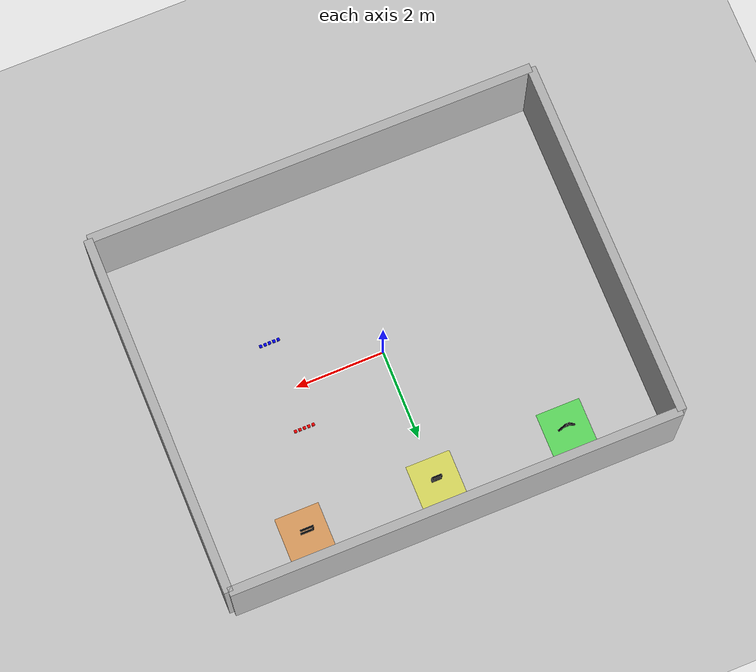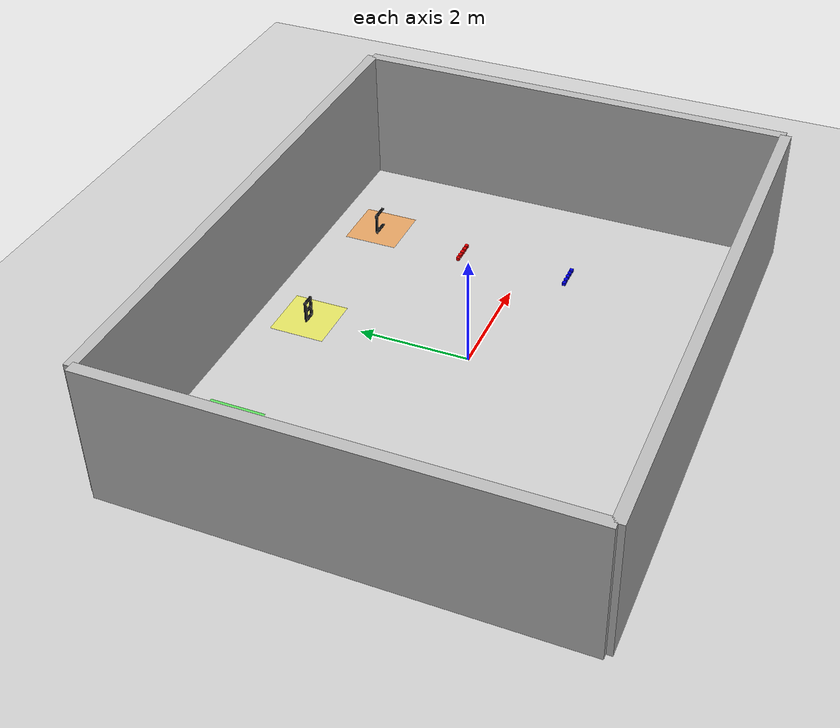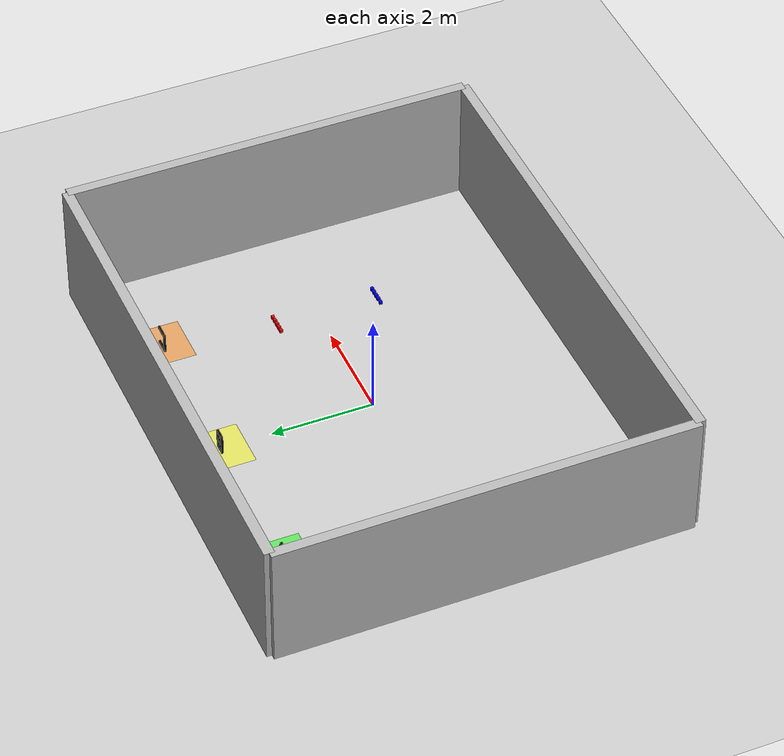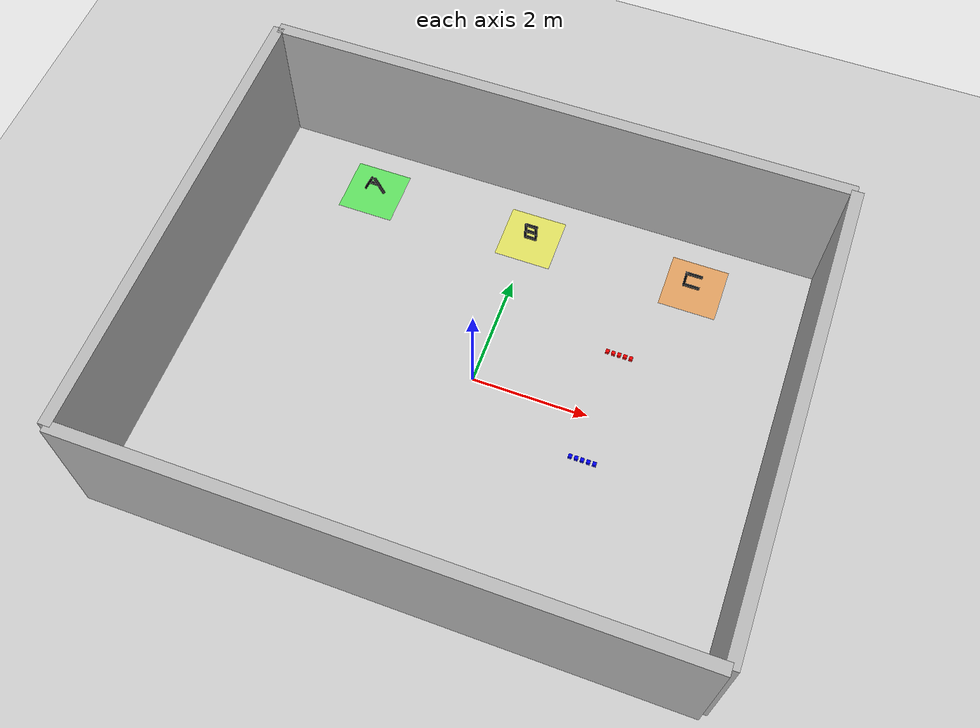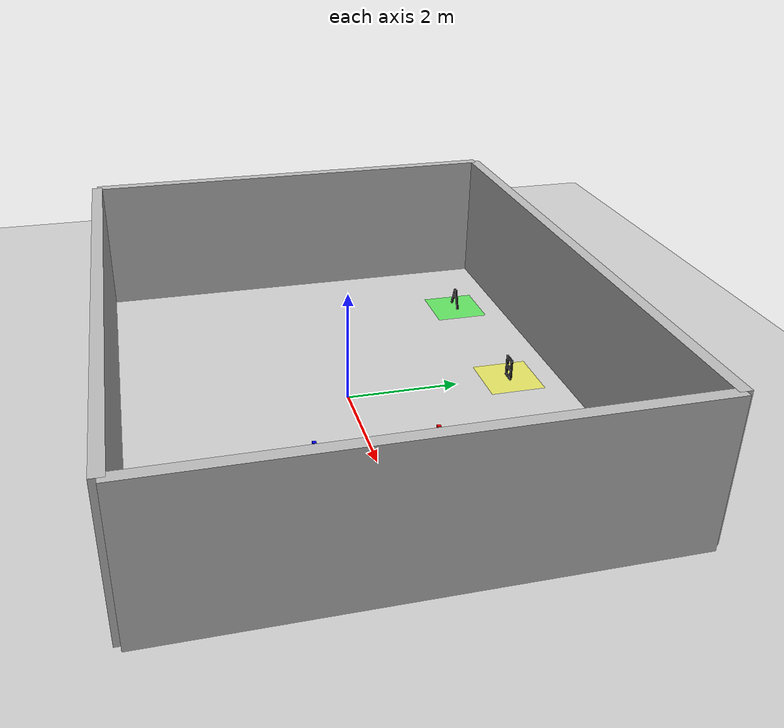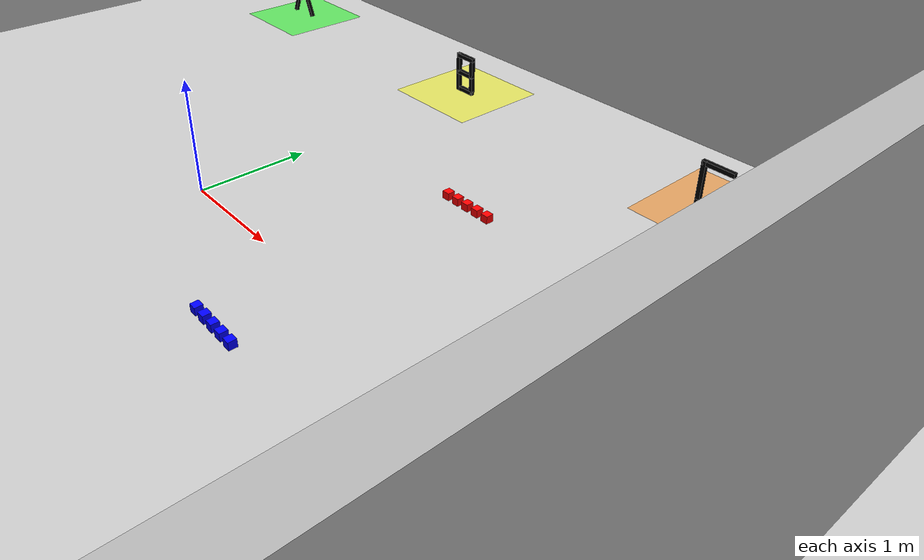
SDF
<?xml version="1.0" ?>
<sdf version="1.6">
  <world name="default">

    <include>
      <uri>model://sun</uri>
    </include>
    <include>
      <uri>model://ground_plane</uri>
    </include>

    <model name='wall_north'>
      <static>true</static>
      <pose>0 4 1.25 0 0 0</pose>
      <link name='link'>
        <collision name='collision'><geometry><box><size>10 0.2 2.5</size></box></geometry></collision>
        <visual name='visual'><geometry><box><size>10 0.2 2.5</size></box></geometry></visual>
      </link>
    </model>
    <model name='wall_south'>
      <static>true</static>
      <pose>0 -4 1.25 0 0 0</pose>
      <link name='link'>
        <collision name='collision'><geometry><box><size>10 0.2 2.5</size></box></geometry></collision>
        <visual name='visual'><geometry><box><size>10 0.2 2.5</size></box></geometry></visual>
      </link>
    </model>
    <model name='wall_east'>
      <static>true</static>
      <pose>5 0 1.25 0 0 1.5707</pose>
      <link name='link'>
        <collision name='collision'><geometry><box><size>8 0.2 2.5</size></box></geometry></collision>
        <visual name='visual'><geometry><box><size>8 0.2 2.5</size></box></geometry></visual>
      </link>
    </model>
    <model name='wall_west'>
      <static>true</static>
      <pose>-5 0 1.25 0 0 1.5707</pose>
      <link name='link'>
        <collision name='collision'><geometry><box><size>8 0.2 2.5</size></box></geometry></collision>
        <visual name='visual'><geometry><box><size>8 0.2 2.5</size></box></geometry></visual>
      </link>
    </model>

    <model name='red_cargo_box_1'>
      <pose>2.0 1.0 0.5 0 0 0</pose>
      <link name='link'>
        <inertial><mass>0.1</mass></inertial>
        <collision name='collision'><geometry><box><size>0.06 0.06 0.06</size></box></geometry></collision>
        <visual name='visual'>
          <geometry><box><size>0.06 0.06 0.06</size></box></geometry>
          <material><ambient>1 0 0 1</ambient><diffuse>1 0 0 1</diffuse></material>
        </visual>
      </link>
    </model>
    <model name='red_cargo_box_2'>
      <pose>2.1 1.0 0.5 0 0 0</pose>
      <link name='link'>
        <inertial><mass>0.1</mass></inertial>
        <collision name='collision'><geometry><box><size>0.06 0.06 0.06</size></box></geometry></collision>
        <visual name='visual'>
          <geometry><box><size>0.06 0.06 0.06</size></box></geometry>
          <material><ambient>1 0 0 1</ambient><diffuse>1 0 0 1</diffuse></material>
        </visual>
      </link>
    </model>
    <model name='red_cargo_box_3'>
      <pose>2.2 1.0 0.5 0 0 0</pose>
      <link name='link'>
        <inertial><mass>0.1</mass></inertial>
        <collision name='collision'><geometry><box><size>0.06 0.06 0.06</size></box></geometry></collision>
        <visual name='visual'>
          <geometry><box><size>0.06 0.06 0.06</size></box></geometry>
          <material><ambient>1 0 0 1</ambient><diffuse>1 0 0 1</diffuse></material>
        </visual>
      </link>
    </model>
    <model name='red_cargo_box_4'>
      <pose>2.3 1.0 0.5 0 0 0</pose>
      <link name='link'>
        <inertial><mass>0.1</mass></inertial>
        <collision name='collision'><geometry><box><size>0.06 0.06 0.06</size></box></geometry></collision>
        <visual name='visual'>
          <geometry><box><size>0.06 0.06 0.06</size></box></geometry>
          <material><ambient>1 0 0 1</ambient><diffuse>1 0 0 1</diffuse></material>
        </visual>
      </link>
    </model>
    <model name='red_cargo_box_5'>
      <pose>2.4 1.0 0.5 0 0 0</pose>
      <link name='link'>
        <inertial><mass>0.1</mass></inertial>
        <collision name='collision'><geometry><box><size>0.06 0.06 0.06</size></box></geometry></collision>
        <visual name='visual'>
          <geometry><box><size>0.06 0.06 0.06</size></box></geometry>
          <material><ambient>1 0 0 1</ambient><diffuse>1 0 0 1</diffuse></material>
        </visual>
      </link>
    </model>

    <model name='blue_cargo_box_1'>
      <pose>2.0 -1.0 0.5 0 0 0</pose>
      <link name='link'>
        <inertial><mass>0.1</mass></inertial>
        <collision name='collision'><geometry><box><size>0.06 0.06 0.06</size></box></geometry></collision>
        <visual name='visual'>
          <geometry><box><size>0.06 0.06 0.06</size></box></geometry>
          <material><ambient>0 0 1 1</ambient><diffuse>0 0 1 1</diffuse></material>
        </visual>
      </link>
    </model>
    <model name='blue_cargo_box_2'>
      <pose>2.1 -1.0 0.5 0 0 0</pose>
      <link name='link'>
        <inertial><mass>0.1</mass></inertial>
        <collision name='collision'><geometry><box><size>0.06 0.06 0.06</size></box></geometry></collision>
        <visual name='visual'>
          <geometry><box><size>0.06 0.06 0.06</size></box></geometry>
          <material><ambient>0 0 1 1</ambient><diffuse>0 0 1 1</diffuse></material>
        </visual>
      </link>
    </model>
    <model name='blue_cargo_box_3'>
      <pose>2.2 -1.0 0.5 0 0 0</pose>
      <link name='link'>
        <inertial><mass>0.1</mass></inertial>
        <collision name='collision'><geometry><box><size>0.06 0.06 0.06</size></box></geometry></collision>
        <visual name='visual'>
          <geometry><box><size>0.06 0.06 0.06</size></box></geometry>
          <material><ambient>0 0 1 1</ambient><diffuse>0 0 1 1</diffuse></material>
        </visual>
      </link>
    </model>
    <model name='blue_cargo_box_4'>
      <pose>2.3 -1.0 0.5 0 0 0</pose>
      <link name='link'>
        <inertial><mass>0.1</mass></inertial>
        <collision name='collision'><geometry><box><size>0.06 0.06 0.06</size></box></geometry></collision>
        <visual name='visual'>
          <geometry><box><size>0.06 0.06 0.06</size></box></geometry>
          <material><ambient>0 0 1 1</ambient><diffuse>0 0 1 1</diffuse></material>
        </visual>
      </link>
    </model>
    <model name='blue_cargo_box_5'>
      <pose>2.4 -1.0 0.5 0 0 0</pose>
      <link name='link'>
        <inertial><mass>0.1</mass></inertial>
        <collision name='collision'><geometry><box><size>0.06 0.06 0.06</size></box></geometry></collision>
        <visual name='visual'>
          <geometry><box><size>0.06 0.06 0.06</size></box></geometry>
          <material><ambient>0 0 1 1</ambient><diffuse>0 0 1 1</diffuse></material>
        </visual>
      </link>
    </model>

    <model name='placement_area_A'>
      <static>true</static>
      <pose>-3 3 0.01 0 0 0</pose>
      <link name='base_area'>
        <visual name='visual'>
          <geometry><plane><normal>0 0 1</normal><size>1 1</size></plane></geometry>
          <material><ambient>0 1 0 0.5</ambient><diffuse>0 1 0 0.5</diffuse></material>
        </visual>
      </link>
      <link name='letter_A_1'><pose>-0.1 0 0.22 0 0.4 0</pose><visual name='v'><geometry><box><size>0.04 0.04 0.4</size></box></geometry><material><ambient>0 0 0 1</ambient><diffuse>0 0 0 1</diffuse></material></visual></link>
      <link name='letter_A_2'><pose>0.1 0 0.22 0 -0.4 0</pose><visual name='v'><geometry><box><size>0.04 0.04 0.4</size></box></geometry><material><ambient>0 0 0 1</ambient><diffuse>0 0 0 1</diffuse></material></visual></link>
      <link name='letter_A_3'><pose>0 0 0.25 0 0 0</pose><visual name='v'><geometry><box><size>0.15 0.04 0.04</size></box></geometry><material><ambient>0 0 0 1</ambient><diffuse>0 0 0 1</diffuse></material></visual></link>
    </model>

    <model name='placement_area_B'>
      <static>true</static>
      <pose>0 3 0.01 0 0 0</pose>
      <link name='base_area'>
        <visual name='visual'>
          <geometry><plane><normal>0 0 1</normal><size>1 1</size></plane></geometry>
          <material><ambient>1 1 0 0.5</ambient><diffuse>1 1 0 0.5</diffuse></material>
        </visual>
      </link>
      <link name='letter_B_vertical_stroke'><pose>-0.1 0 0.2 0 0 0</pose><visual name='v'><geometry><box><size>0.04 0.04 0.4</size></box></geometry><material><ambient>0 0 0 1</ambient><diffuse>0 0 0 1</diffuse></material></visual></link>
      <link name='letter_B_top_horizontal'><pose>0.0 0 0.38 0 0 0</pose><visual name='v'><geometry><box><size>0.22 0.04 0.04</size></box></geometry><material><ambient>0 0 0 1</ambient><diffuse>0 0 0 1</diffuse></material></visual></link>
      <link name='letter_B_middle_horizontal'><pose>0.0 0 0.2 0 0 0</pose><visual name='v'><geometry><box><size>0.22 0.04 0.04</size></box></geometry><material><ambient>0 0 0 1</ambient><diffuse>0 0 0 1</diffuse></material></visual></link>
      <link name='letter_B_bottom_horizontal'><pose>0.0 0 0.02 0 0 0</pose><visual name='v'><geometry><box><size>0.22 0.04 0.04</size></box></geometry><material><ambient>0 0 0 1</ambient><diffuse>0 0 0 1</diffuse></material></visual></link>
      <link name='letter_B_top_vertical_stroke'><pose>0.09 0 0.29 0 0 0</pose><visual name='v'><geometry><box><size>0.04 0.04 0.2</size></box></geometry><material><ambient>0 0 0 1</ambient><diffuse>0 0 0 1</diffuse></material></visual></link>
      <link name='letter_B_bottom_vertical_stroke'><pose>0.09 0 0.11 0 0 0</pose><visual name='v'><geometry><box><size>0.04 0.04 0.2</size></box></geometry><material><ambient>0 0 0 1</ambient><diffuse>0 0 0 1</diffuse></material></visual></link>
    </model>

    <model name='placement_area_C'>
      <static>true</static>
      <pose>3 3 0.01 0 0 0</pose>
      <link name='base_area'>
        <visual name='visual'>
          <geometry><plane><normal>0 0 1</normal><size>1 1</size></plane></geometry>
          <material><ambient>1 0.5 0 0.5</ambient><diffuse>1 0.5 0 0.5</diffuse></material>
        </visual>
      </link>
      <link name='letter_C_1'><pose>-0.05 0 0.38 0 0 0</pose><visual name='v'><geometry><box><size>0.3 0.04 0.04</size></box></geometry><material><ambient>0 0 0 1</ambient><diffuse>0 0 0 1</diffuse></material></visual></link>
      <link name='letter_C_2'><pose>-0.05 0 0.02 0 0 0</pose><visual name='v'><geometry><box><size>0.3 0.04 0.04</size></box></geometry><material><ambient>0 0 0 1</ambient><diffuse>0 0 0 1</diffuse></material></visual></link>
      <link name='letter_C_3'><pose>-0.18 0 0.2 0 0 0</pose><visual name='v'><geometry><box><size>0.04 0.04 0.4</size></box></geometry><material><ambient>0 0 0 1</ambient><diffuse>0 0 0 1</diffuse></material></visual></link>
    </model>

  </world>
</sdf>
